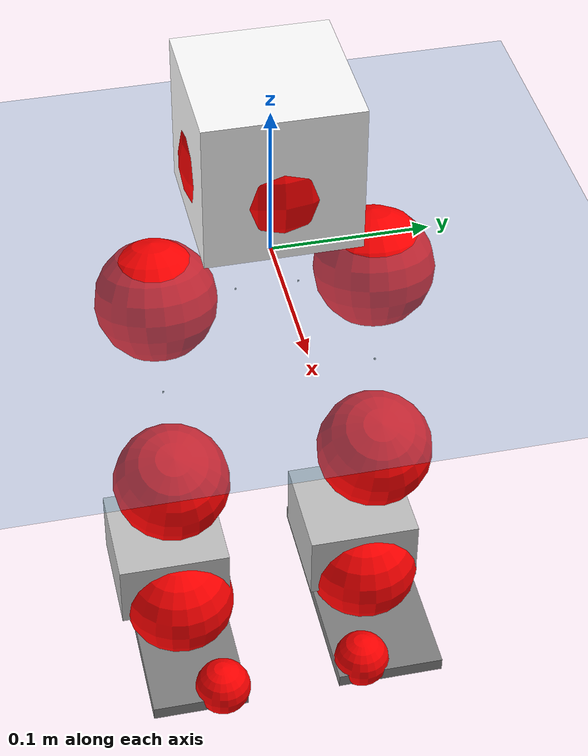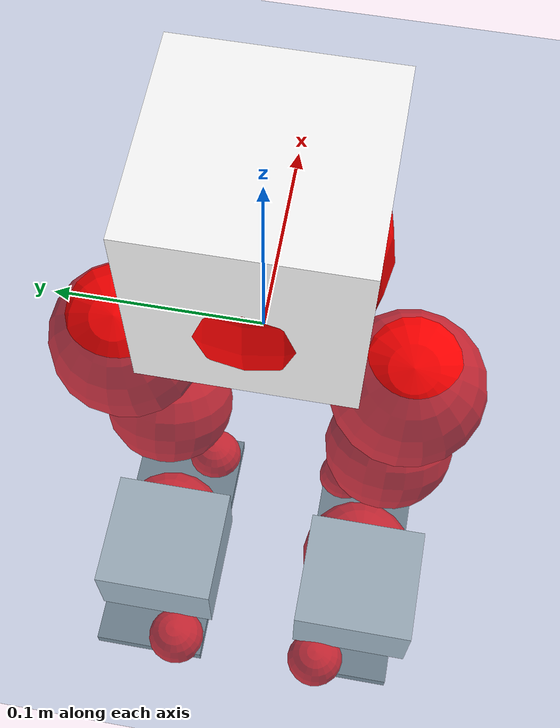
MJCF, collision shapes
<mujoco model="pi_12dof_release_v1">
  <compiler angle="radian" assetdir="assets" balanceinertia="true" inertiafromgeom="false"/>

  <option timestep="0.005" density="1.2" viscosity="2e-05"/>

  <size nkey="1"/>

  <visual>
    <quality shadowsize="8192"/>
    <map shadowclip="0.5"/>
  </visual>

  <default>
    <default class="/">
      <joint armature="0.01" damping="0.01" frictionloss="0.01"/>
      <geom contype="0" conaffinity="0" group="1" solref="-1000 -80"/>
      <site size="0.01 0.005 0.005" group="5"/>
      <general forcelimited="true" biastype="affine" gainprm="20" biasprm="0 -20 -0.5"/>
      <default class="foot">
        <geom size="0.0845 0.036 0.005" type="box" condim="6" group="4" priority="1" friction="0.9 0.2 0.2" solimp="0.015 1 0.005"/>
      </default>
      <default class="reward_collision_sphere">
        <geom group="5" rgba="1 0 0 1"/>
      </default>
    </default>
  </default>

  <asset>
    <texture type="skybox" colorspace="auto" name="//unnamed_texture_0" builtin="gradient" rgb1="0.95 0.95 0.95" rgb2="0.95 0.95 0.95" width="100" height="600"/>
    <texture type="2d" colorspace="auto" name="texplane" builtin="checker" rgb1="0.345 0.575 0.748" rgb2="0.345 0.575 0.748" markrgb="1 1 1" width="512" height="512"/>
    <material name="MatPlane" class="/" texture="texplane" texuniform="true" texrepeat="2 2" specular="0.9"/>
    <mesh name="baselink_1" class="/" file="baselink_1.STL"/>
    <mesh name="r_hip_pitch_link" class="/" file="r_hip_pitch_link.STL"/>
    <mesh name="r_hip_roll_link" class="/" file="r_hip_roll_link.STL"/>
    <mesh name="r_thigh_link" class="/" file="r_thigh_link.STL"/>
    <mesh name="r_calf_link" class="/" file="r_calf_link.STL"/>
    <mesh name="r_ankle_pitch_link" class="/" file="r_ankle_pitch_link.STL"/>
    <mesh name="r_ankle_roll_link" class="/" file="r_ankle_roll_link.STL"/>
    <mesh name="l_hip_pitch_link" class="/" file="l_hip_pitch_link.STL"/>
    <mesh name="l_hip_roll_link" class="/" file="l_hip_roll_link.STL"/>
    <mesh name="l_thigh_link" class="/" file="l_thigh_link.STL"/>
    <mesh name="l_calf_link" class="/" file="l_calf_link.STL"/>
    <mesh name="l_ankle_pitch_link" class="/" file="l_ankle_pitch_link.STL"/>
    <mesh name="l_ankle_roll_link" class="/" file="l_ankle_roll_link.STL"/>
  </asset>

  <worldbody>
    <geom name="floor" class="/" size="100 100 0.125" type="plane" group="0" material="MatPlane"/>
    <light name="toplight_shadow" class="/" pos="0 0 5" dir="0.0990148 0.0990148 -0.990148" type="directional" ambient="0.04 0.04 0.04" diffuse="0.55 0.55 0.55" specular="0.12 0.12 0.12"/>
    <light name="toplight_fill" class="/" pos="0 0 5" dir="0.0990148 0.0990148 -0.990148" type="directional" castshadow="false" ambient="0.04 0.04 0.04" diffuse="0.3 0.3 0.3" specular="0.08 0.08 0.08"/>
    <body name="trunk" pos="-0.00265958 -0.00145191 0.00070213" quat="0.999999 0.000195387 -0.00100718 -0.0002677">
      <inertial pos="-0.000252661 0.000628176 0.0383912" quat="0.697395 0.00829147 0.0113173 0.716549" mass="1.90349" diaginertia="0.0127916 0.00474917 0.00345226"/>
      <joint name="//unnamed_joint_0" type="free"/>
      <geom name="//unnamed_geom_1" class="/" type="mesh" density="0" rgba="1 1 1 1" mesh="baselink_1"/>
      <geom name="//unnamed_geom_2" class="/" size="0.0481454 0.0481454 0.0481454" pos="0 0 0.0766035" type="box" rgba="1 1 1 1"/>
      <geom name="//unnamed_geom_3" class="reward_collision_sphere" size="0.0529599" pos="0 0 0.0670281"/>
      <site name="imu" class="/" pos="0.00163094 -0.00420837 0.00533804" size="0.00962908"/>
      <camera name="track" class="/" pos="0 -1.75769 0" quat="0.707107 0.707107 0 0" mode="trackcom"/>
      <camera name="ego_camera" class="/" pos="0.0789251 0 0.172358" quat="-0.5 -0.5 0.5 0.5"/>
      <body name="r_hip_pitch_link" pos="-0.000897261 -0.0201035 -0.0318123" quat="0.992343 0.000218632 -0.123515 -0.000459128">
        <inertial pos="-0.00158843 -0.0502535 0.000361049" quat="-0.0185814 0.707834 -0.0274232 0.705602" mass="0.340949" diaginertia="0.000145162 5.12366e-05 6.91836e-05"/>
        <joint name="r_hip_pitch_joint" class="/" pos="0 0 0" axis="-0.00130371 -0.999999 0.000564041" range="-1.75162 1.22926" armature="0.00954182" damping="0.0139091" frictionloss="0.0103708"/>
        <geom name="//unnamed_geom_4" class="/" type="mesh" density="0" rgba="0.75294 0.75294 0.75294 1" mesh="r_hip_pitch_link"/>
        <geom name="//unnamed_geom_5" class="/" size="0.000481454 0.000481454 0.000481454" type="box" rgba="0.75294 0.75294 0.75294 1"/>
        <body name="r_hip_roll_link" pos="-0.00117655 -0.0500604 -0.000479114" quat="1 -3.65843e-05 2.00742e-07 9.01828e-05">
          <inertial pos="0.00117087 0.000313591 -0.056439" quat="0.707634 -0.0786826 -0.0831537 0.697244" mass="0.349917" diaginertia="0.000427734 0.000143282 0.000103913"/>
          <joint name="r_hip_roll_joint" class="/" pos="0 0 0" axis="-1 -0.000416673 -0.000155477" stiffness="0.00345302" range="-0.163871 0.496399" armature="0.00831671" damping="0" frictionloss="0.0098324"/>
          <geom name="//unnamed_geom_6" class="/" type="mesh" density="0" rgba="0.75294 0.75294 0.75294 1" mesh="r_hip_roll_link"/>
          <geom name="//unnamed_geom_7" class="/" size="0.000481454 0.000481454 0.000481454" type="box" rgba="0.75294 0.75294 0.75294 1"/>
          <geom name="//unnamed_geom_8" class="reward_collision_sphere" size="0.0385163"/>
          <body name="r_thigh_link" pos="-0.00133163 -0.000423772 -0.0656979" quat="1 -0.000319143 0.000311194 -0.000336072">
            <inertial pos="0.00106696 0.000694801 -0.0471524" quat="0.734309 0.678719 0.0107824 0.00381945" mass="0.099433" diaginertia="0.000163503 4.97487e-05 4.59959e-05"/>
            <joint name="r_thigh_joint" class="/" pos="0 0 0" axis="0.000919724 0.00736882 -0.999972" range="-0.304786 0.61487" armature="0.0084826" damping="0.000424735" frictionloss="0.00936189"/>
            <geom name="//unnamed_geom_9" class="/" type="mesh" density="0" rgba="0.75294 0.75294 0.75294 1" mesh="r_thigh_link"/>
            <geom name="//unnamed_geom_10" class="/" size="0.000481454 0.000481454 0.000481454" type="box" rgba="0.75294 0.75294 0.75294 1"/>
            <body name="r_calf_link" pos="-0.00134872 0.000447711 -0.0677035" quat="0.947686 3.51269e-05 0.319205 1.70644e-05">
              <inertial pos="0.00153089 -0.00186426 -0.0668136" quat="0.99997 -0.00547232 0.00124258 0.00542347" mass="0.763044" diaginertia="0.00464753 0.00188846 0.000141233"/>
              <joint name="r_calf_joint" class="/" pos="0 0 0" axis="0.000386664 -0.999997 -0.00260366" stiffness="0.0100451" range="-1.66136 0.600041" armature="0.0110438" damping="0" frictionloss="0.0109132"/>
              <geom name="//unnamed_geom_11" class="/" type="mesh" density="0" rgba="0.75294 0.75294 0.75294 1" mesh="r_calf_link"/>
              <geom name="//unnamed_geom_12" class="/" size="0.000481454 0.000481454 0.000481454" type="box" rgba="0.75294 0.75294 0.75294 1"/>
              <geom name="//unnamed_geom_13" class="reward_collision_sphere" size="0.0385163"/>
              <body name="r_ankle_pitch_link" pos="-0.000591766 0.00146012 -0.131712" quat="0.980164 -0.001155 -0.198186 -0.00055231">
                <inertial pos="0.00341035 0.000584066 0.000777373" quat="0.00252185 0.706339 -0.00235717 0.707866" mass="0.153441" diaginertia="0.00039965 0.000118138 9.49294e-05"/>
                <joint name="r_ankle_pitch_joint" class="/" pos="0 0 0" axis="-0.0070661 -0.999898 0.0124317" range="-1.3392 0.539895" armature="0.00989944" damping="0.0071624" frictionloss="0.0089941"/>
                <geom name="//unnamed_geom_14" class="/" type="mesh" density="0" rgba="0.75294 0.75294 0.75294 1" mesh="r_ankle_pitch_link"/>
                <geom name="//unnamed_geom_15" class="/" size="0.0375534 0.0385163 0.0240727" type="box" rgba="0.75294 0.75294 0.75294 1"/>
                <body name="r_ankle_roll_link" pos="0.0819394 0.00365719 -0.000342243" quat="1 -1.61802e-06 -1.76604e-05 -1.16658e-07">
                  <inertial pos="-0.0246347 0.000335004 -0.0129719" quat="0.560666 0.430803 0.433194 0.558932" mass="0.469439" diaginertia="0.00154411 0.000544389 0.000235836"/>
                  <joint name="r_ankle_roll_joint" class="/" pos="0 0 0" axis="-0.999913 0.0111853 -0.00697058" stiffness="0.000851943" range="-0.158434 0.106586" armature="0.00917463" damping="0" frictionloss="0.00962033"/>
                  <geom name="//unnamed_geom_16" class="/" type="mesh" density="0" rgba="0.75294 0.75294 0.75294 1" mesh="r_ankle_roll_link"/>
                  <geom name="//unnamed_geom_17" class="/" type="mesh" rgba="0.75294 0.75294 0.75294 1" mesh="r_ankle_roll_link"/>
                  <geom name="right_foot" class="foot" size="0.0807269 0.0329473 0.00473885" pos="-0.0536691 0 -0.0421319"/>
                  <geom name="//unnamed_geom_19" class="reward_collision_sphere" size="0.0385163" pos="-0.0526167 0 -0.0191509"/>
                  <geom name="//unnamed_geom_20" class="reward_collision_sphere" size="0.0192582" pos="0.015785 0.0175769 -0.0383017"/>
                  <geom name="//unnamed_geom_21" class="reward_collision_sphere" size="0.0192582" pos="-0.12628 0.0175769 -0.0383017"/>
                  <site name="right_foot" class="foot" pos="-0.0536691 0 -0.0421319" size="0.00962908"/>
                </body>
              </body>
            </body>
          </body>
        </body>
      </body>
      <body name="l_hip_pitch_link" pos="0.00161737 0.019368 -0.0301617" quat="0.992289 -0.000415461 -0.123944 0.000913374">
        <inertial pos="0.00352637 0.0484817 0.000445829" quat="-0.0385469 0.705503 0.0293089 0.707051" mass="0.346116" diaginertia="0.000166987 5.66446e-05 8.27093e-05"/>
        <joint name="l_hip_pitch_joint" class="/" pos="0 0 0" axis="-0.00429613 0.999988 -0.00222351" range="-1.23396 1.76204" armature="0.0105279" damping="0" frictionloss="0.00937929"/>
        <geom name="//unnamed_geom_22" class="/" type="mesh" density="0" rgba="0.75294 0.75294 0.75294 1" mesh="l_hip_pitch_link"/>
        <geom name="//unnamed_geom_23" class="/" size="0.000481454 0.000481454 0.000481454" type="box" rgba="0.75294 0.75294 0.75294 1"/>
        <body name="l_hip_roll_link" pos="-0.0023403 0.0492904 0.00189501" quat="0.999999 -0.000741202 0.000534216 -0.000923446">
          <inertial pos="-0.00166401 -8.49835e-05 -0.0576419" quat="0.691239 -0.0798228 -0.0759618 0.714176" mass="0.337385" diaginertia="0.000424685 0.000142078 0.00010229"/>
          <joint name="l_hip_roll_joint" class="/" pos="0 0 0" axis="-0.999992 0.00389651 -0.000540521" stiffness="0.0093722" range="-0.480152 0.12935" armature="0.0104899" damping="0" frictionloss="0.00962497"/>
          <geom name="//unnamed_geom_24" class="/" type="mesh" density="0" rgba="0.75294 0.75294 0.75294 1" mesh="l_hip_roll_link"/>
          <geom name="//unnamed_geom_25" class="/" size="0.000481454 0.000481454 0.000481454" type="box" rgba="0.75294 0.75294 0.75294 1"/>
          <geom name="//unnamed_geom_26" class="reward_collision_sphere" size="0.0385163"/>
          <body name="l_thigh_link" pos="-1.88351e-05 -0.00118773 -0.0660471" quat="1 9.66909e-05 -0.000267586 -0.000131495">
            <inertial pos="0.000566676 -0.00138313 -0.0450965" quat="0.675163 0.737668 -0.00075169 0.000687693" mass="0.100163" diaginertia="0.000161128 4.97011e-05 4.61045e-05"/>
            <joint name="l_thigh_joint" class="/" pos="0 0 0" axis="-0.00355339 0.00314656 -0.999989" range="-0.598076 0.307713" armature="0.00941901" damping="0.000400523" frictionloss="0.00973501"/>
            <geom name="//unnamed_geom_27" class="/" type="mesh" density="0" rgba="0.75294 0.75294 0.75294 1" mesh="l_thigh_link"/>
            <geom name="//unnamed_geom_28" class="/" size="0.000481454 0.000481454 0.000481454" type="box" rgba="0.75294 0.75294 0.75294 1"/>
            <body name="l_calf_link" pos="0.00105182 -0.00223327 -0.0653864" quat="0.947368 -0.000183718 0.320146 -9.0672e-05">
              <inertial pos="0.00022685 0.00444006 -0.0675626" quat="0.999853 0.00907121 0.00874059 0.0115994" mass="0.724415" diaginertia="0.00457282 0.00185492 0.000141493"/>
              <joint name="l_calf_joint" class="/" pos="0 0 0" axis="0.00220856 0.999997 0.00138374" stiffness="0.00265441" range="-0.636067 1.64732" armature="0.00834301" damping="0.0053526" frictionloss="0.0109142"/>
              <geom name="//unnamed_geom_29" class="/" type="mesh" density="0" rgba="0.75294 0.75294 0.75294 1" mesh="l_calf_link"/>
              <geom name="//unnamed_geom_30" class="/" size="0.000481454 0.000481454 0.000481454" type="box" rgba="0.75294 0.75294 0.75294 1"/>
              <geom name="//unnamed_geom_31" class="reward_collision_sphere" size="0.0385163"/>
              <body name="l_ankle_pitch_link" pos="0.000779347 0.00132258 -0.136352" quat="0.980073 0.000122474 -0.198638 -2.88503e-05">
                <inertial pos="0.0049496 -0.000925073 0.000209718" quat="-0.00170902 0.70772 0.00323451 0.706483" mass="0.158853" diaginertia="0.000403796 0.00011794 9.43191e-05"/>
                <joint name="l_ankle_pitch_joint" class="/" pos="0 0 0" axis="-0.000706035 0.999997 -0.00245336" range="-0.4862 1.30378" armature="0.0096411" damping="0.00348156" frictionloss="0.00939422"/>
                <geom name="//unnamed_geom_32" class="/" type="mesh" density="0" rgba="0.75294 0.75294 0.75294 1" mesh="l_ankle_pitch_link"/>
                <geom name="//unnamed_geom_33" class="/" size="0.0375534 0.0385163 0.0240727" type="box" rgba="0.75294 0.75294 0.75294 1"/>
                <body name="l_ankle_roll_link" pos="0.0769491 0.00285116 0.000298607" quat="1 -0.000437027 0.000188873 0.000176811">
                  <inertial pos="-0.0229385 -0.00104921 -0.0135942" quat="0.562762 0.430205 0.432807 0.557585" mass="0.462553" diaginertia="0.00141839 0.000512029 0.000223777"/>
                  <joint name="l_ankle_roll_joint" class="/" pos="0 0 0" axis="-0.999935 0.00807612 0.00810609" range="-0.131612 0.152641" armature="0.00987819" damping="0.00996889" frictionloss="0.00912671"/>
                  <geom name="//unnamed_geom_34" class="/" type="mesh" density="0" rgba="0.75294 0.75294 0.75294 1" mesh="l_ankle_roll_link"/>
                  <geom name="//unnamed_geom_35" class="/" type="mesh" rgba="0.75294 0.75294 0.75294 1" mesh="l_ankle_roll_link"/>
                  <geom name="left_foot" class="foot" size="0.0836025 0.0368135 0.00476421" pos="-0.0536691 0 -0.0421319"/>
                  <geom name="//unnamed_geom_37" class="reward_collision_sphere" size="0.0385163" pos="-0.0526167 0 -0.0191509"/>
                  <geom name="//unnamed_geom_38" class="reward_collision_sphere" size="0.0192582" pos="0.015785 -0.0175769 -0.0383017"/>
                  <geom name="//unnamed_geom_39" class="reward_collision_sphere" size="0.0192582" pos="-0.12628 -0.0175769 -0.0383017"/>
                  <site name="left_foot" class="foot" pos="-0.0536691 0 -0.0421319" size="0.00962908"/>
                </body>
              </body>
            </body>
          </body>
        </body>
      </body>
    </body>
  </worldbody>

  <contact>
    <pair class="/" geom1="floor" geom2="right_foot" name="//unnamed_contact_1"/>
    <pair class="/" geom1="floor" geom2="left_foot" name="//unnamed_contact_0"/>
  </contact>

  <actuator>
    <general name="r_hip_pitch_joint" class="/" joint="r_hip_pitch_joint" forcerange="-20.9319 20.9319" gainprm="19.1613" biasprm="0 -19.1613 -0.481347"/>
    <general name="r_hip_roll_joint" class="/" joint="r_hip_roll_joint" forcerange="-20.08 20.08" gainprm="19.1613" biasprm="0 -19.1613 -0.481347"/>
    <general name="r_thigh_joint" class="/" joint="r_thigh_joint" forcerange="-20.3263 20.3263" gainprm="19.1613" biasprm="0 -19.1613 -0.481347"/>
    <general name="r_calf_joint" class="/" joint="r_calf_joint" forcerange="-20.7094 20.7094" gainprm="19.1613" biasprm="0 -19.1613 -0.481347"/>
    <general name="r_ankle_pitch_joint" class="/" joint="r_ankle_pitch_joint" forcerange="-19.5806 19.5806" gainprm="19.1613" biasprm="0 -19.1613 -0.481347"/>
    <general name="r_ankle_roll_joint" class="/" joint="r_ankle_roll_joint" forcerange="-20.7926 20.7926" gainprm="19.1613" biasprm="0 -19.1613 -0.481347"/>
    <general name="l_hip_pitch_joint" class="/" joint="l_hip_pitch_joint" forcerange="-19.8827 19.8827" gainprm="19.1613" biasprm="0 -19.1613 -0.481347"/>
    <general name="l_hip_roll_joint" class="/" joint="l_hip_roll_joint" forcerange="-20.1329 20.1329" gainprm="19.1613" biasprm="0 -19.1613 -0.481347"/>
    <general name="l_thigh_joint" class="/" joint="l_thigh_joint" forcerange="-20.3008 20.3008" gainprm="19.1613" biasprm="0 -19.1613 -0.481347"/>
    <general name="l_calf_joint" class="/" joint="l_calf_joint" forcerange="-22.2296 22.2296" gainprm="19.1613" biasprm="0 -19.1613 -0.481347"/>
    <general name="l_ankle_pitch_joint" class="/" joint="l_ankle_pitch_joint" forcerange="-20.1433 20.1433" gainprm="19.1613" biasprm="0 -19.1613 -0.481347"/>
    <general name="l_ankle_roll_joint" class="/" joint="l_ankle_roll_joint" forcerange="-18.8795 18.8795" gainprm="19.1613" biasprm="0 -19.1613 -0.481347"/>
  </actuator>

  <sensor>
    <gyro site="imu" name="imu_angular_velocity"/>
    <velocimeter site="imu" name="imu_linear_velocity"/>
    <framelinvel objtype="site" objname="left_foot" name="left_foot_global_linear_velocity"/>
    <framelinvel objtype="site" objname="right_foot" name="right_foot_global_linear_velocity"/>
  </sensor>

  <keyframe>
    <key name="home" qpos="0 0 0.291 1 0 0 0 0.4 0 0 -0.8 0.4 0 -0.4 0 0 0.8 -0.4 0"/>
  </keyframe>
</mujoco>
